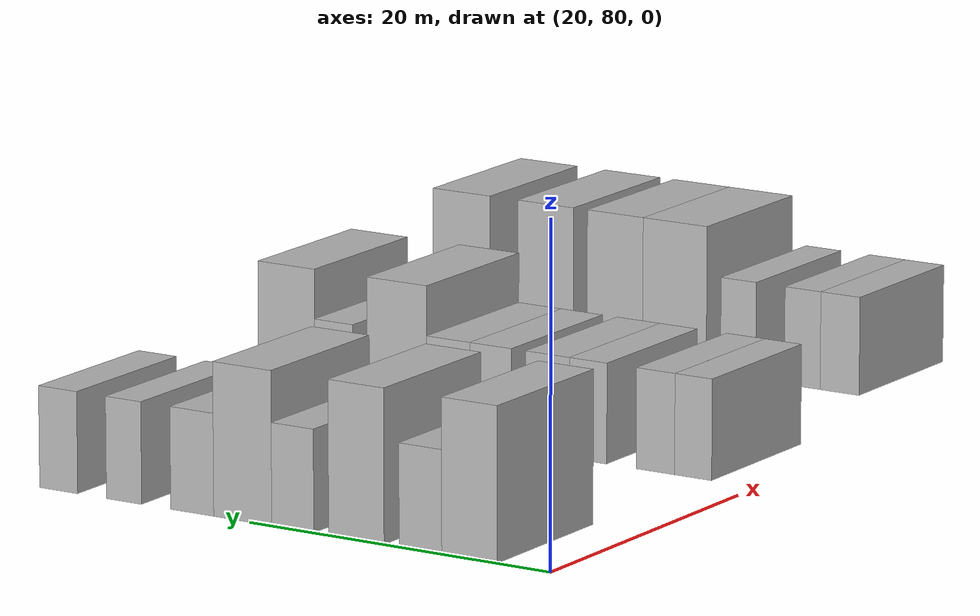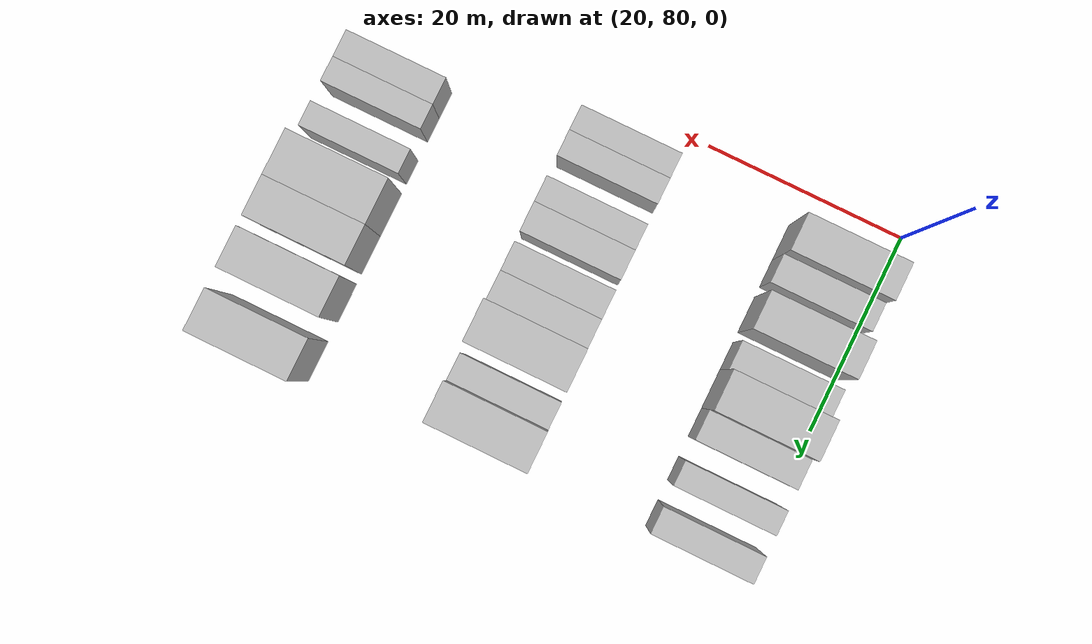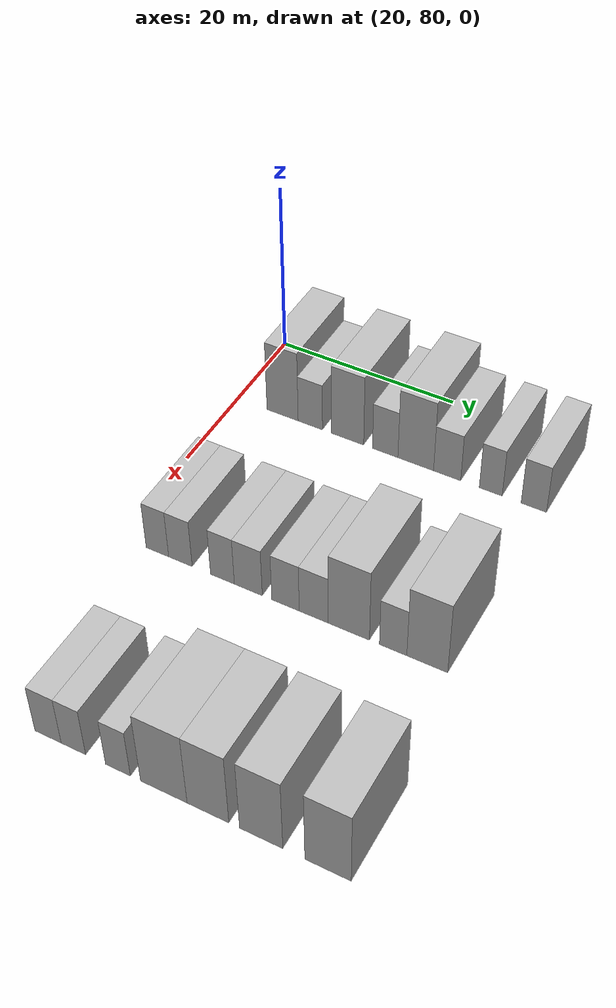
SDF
<sdf version="1.6">
 <world name="default">
  <model name="building_87">
   <static>1</static>
   <pose>25.0000 85.3126 0 0.000000 0.000000 0.000000</pose>
   <link name="link">
    <pose>0 0 4.50 0 0 0</pose>
    <collision name="collision"><geometry><box><size>10.0000 3.6634 9.0000</size></box></geometry></collision>
    <visual name="visual">
     <cast_shadows>0</cast_shadows>
     <geometry><box><size>10.0000 3.6634 9.0000</size></box></geometry>
     <material>
      <script>
       <uri>model://HANNAS_wall/materials/scripts</uri>
       <uri>model://HANNAS_wall/materials/textures</uri>
       <name>vrc/HANNAS_wall</name>
      </script>
     </material>
    </visual>
   </link>
  </model>
  <model name="building_88">
   <static>1</static>
   <pose>25.0000 88.5590 0 0.000000 0.000000 0.000000</pose>
   <link name="link">
    <pose>0 0 3.00 0 0 0</pose>
    <collision name="collision"><geometry><box><size>10.0000 2.8295 6.0000</size></box></geometry></collision>
    <visual name="visual">
     <cast_shadows>0</cast_shadows>
     <geometry><box><size>10.0000 2.8295 6.0000</size></box></geometry>
     <material>
      <script>
       <uri>model://HANNAS_wall/materials/scripts</uri>
       <uri>model://HANNAS_wall/materials/textures</uri>
       <name>vrc/HANNAS_wall</name>
      </script>
     </material>
    </visual>
   </link>
  </model>
  <model name="building_89">
   <static>1</static>
   <pose>25.0000 92.8309 0 0.000000 0.000000 0.000000</pose>
   <link name="link">
    <pose>0 0 4.50 0 0 0</pose>
    <collision name="collision"><geometry><box><size>10.0000 3.7143 9.0000</size></box></geometry></collision>
    <visual name="visual">
     <cast_shadows>0</cast_shadows>
     <geometry><box><size>10.0000 3.7143 9.0000</size></box></geometry>
     <material>
      <script>
       <uri>model://HANNAS_wall/materials/scripts</uri>
       <uri>model://HANNAS_wall/materials/textures</uri>
       <name>vrc/HANNAS_wall</name>
      </script>
     </material>
    </visual>
   </link>
  </model>
  <model name="building_90">
   <static>1</static>
   <pose>25.0000 97.1097 0 0.000000 0.000000 0.000000</pose>
   <link name="link">
    <pose>0 0 3.00 0 0 0</pose>
    <collision name="collision"><geometry><box><size>10.0000 2.8431 6.0000</size></box></geometry></collision>
    <visual name="visual">
     <cast_shadows>0</cast_shadows>
     <geometry><box><size>10.0000 2.8431 6.0000</size></box></geometry>
     <material>
      <script>
       <uri>model://HANNAS_wall/materials/scripts</uri>
       <uri>model://HANNAS_wall/materials/textures</uri>
       <name>vrc/HANNAS_wall</name>
      </script>
     </material>
    </visual>
   </link>
  </model>
  <model name="building_91">
   <static>1</static>
   <pose>25.0000 100.5039 0 0.000000 0.000000 0.000000</pose>
   <link name="link">
    <pose>0 0 4.50 0 0 0</pose>
    <collision name="collision"><geometry><box><size>10.0000 3.9452 9.0000</size></box></geometry></collision>
    <visual name="visual">
     <cast_shadows>0</cast_shadows>
     <geometry><box><size>10.0000 3.9452 9.0000</size></box></geometry>
     <material>
      <script>
       <uri>model://HANNAS_wall/materials/scripts</uri>
       <uri>model://HANNAS_wall/materials/textures</uri>
       <name>vrc/HANNAS_wall</name>
      </script>
     </material>
    </visual>
   </link>
  </model>
  <model name="building_92">
   <static>1</static>
   <pose>25.0000 103.9523 0 0.000000 0.000000 0.000000</pose>
   <link name="link">
    <pose>0 0 3.00 0 0 0</pose>
    <collision name="collision"><geometry><box><size>10.0000 2.9517 6.0000</size></box></geometry></collision>
    <visual name="visual">
     <cast_shadows>0</cast_shadows>
     <geometry><box><size>10.0000 2.9517 6.0000</size></box></geometry>
     <material>
      <script>
       <uri>model://HANNAS_wall/materials/scripts</uri>
       <uri>model://HANNAS_wall/materials/textures</uri>
       <name>vrc/HANNAS_wall</name>
      </script>
     </material>
    </visual>
   </link>
  </model>
  <model name="building_93">
   <static>1</static>
   <pose>25.0000 108.6472 0 0.000000 0.000000 0.000000</pose>
   <link name="link">
    <pose>0 0 3.00 0 0 0</pose>
    <collision name="collision"><geometry><box><size>10.0000 2.4379 6.0000</size></box></geometry></collision>
    <visual name="visual">
     <cast_shadows>0</cast_shadows>
     <geometry><box><size>10.0000 2.4379 6.0000</size></box></geometry>
     <material>
      <script>
       <uri>model://HANNAS_wall/materials/scripts</uri>
       <uri>model://HANNAS_wall/materials/textures</uri>
       <name>vrc/HANNAS_wall</name>
      </script>
     </material>
    </visual>
   </link>
  </model>
  <model name="building_94">
   <static>1</static>
   <pose>25.0000 113.1927 0 0.000000 0.000000 0.000000</pose>
   <link name="link">
    <pose>0 0 3.00 0 0 0</pose>
    <collision name="collision"><geometry><box><size>10.0000 2.6532 6.0000</size></box></geometry></collision>
    <visual name="visual">
     <cast_shadows>0</cast_shadows>
     <geometry><box><size>10.0000 2.6532 6.0000</size></box></geometry>
     <material>
      <script>
       <uri>model://HANNAS_wall/materials/scripts</uri>
       <uri>model://HANNAS_wall/materials/textures</uri>
       <name>vrc/HANNAS_wall</name>
      </script>
     </material>
    </visual>
   </link>
  </model>
  <model name="building_206">
   <static>1</static>
   <pose>47.0000 84.2189 0 0.000000 0.000000 0.000000</pose>
   <link name="link">
    <pose>0 0 3.00 0 0 0</pose>
    <collision name="collision"><geometry><box><size>10.0000 2.4942 6.0000</size></box></geometry></collision>
    <visual name="visual">
     <cast_shadows>0</cast_shadows>
     <geometry><box><size>10.0000 2.4942 6.0000</size></box></geometry>
     <material>
      <script>
       <uri>model://HANNAS_wall/materials/scripts</uri>
       <uri>model://HANNAS_wall/materials/textures</uri>
       <name>vrc/HANNAS_wall</name>
      </script>
     </material>
    </visual>
   </link>
  </model>
  <model name="building_207">
   <static>1</static>
   <pose>47.0000 86.7619 0 0.000000 0.000000 0.000000</pose>
   <link name="link">
    <pose>0 0 3.00 0 0 0</pose>
    <collision name="collision"><geometry><box><size>10.0000 2.5917 6.0000</size></box></geometry></collision>
    <visual name="visual">
     <cast_shadows>0</cast_shadows>
     <geometry><box><size>10.0000 2.5917 6.0000</size></box></geometry>
     <material>
      <script>
       <uri>model://HANNAS_wall/materials/scripts</uri>
       <uri>model://HANNAS_wall/materials/textures</uri>
       <name>vrc/HANNAS_wall</name>
      </script>
     </material>
    </visual>
   </link>
  </model>
  <model name="building_208">
   <static>1</static>
   <pose>47.0000 91.3387 0 0.000000 0.000000 0.000000</pose>
   <link name="link">
    <pose>0 0 3.00 0 0 0</pose>
    <collision name="collision"><geometry><box><size>10.0000 2.5619 6.0000</size></box></geometry></collision>
    <visual name="visual">
     <cast_shadows>0</cast_shadows>
     <geometry><box><size>10.0000 2.5619 6.0000</size></box></geometry>
     <material>
      <script>
       <uri>model://HANNAS_wall/materials/scripts</uri>
       <uri>model://HANNAS_wall/materials/textures</uri>
       <name>vrc/HANNAS_wall</name>
      </script>
     </material>
    </visual>
   </link>
  </model>
  <model name="building_209">
   <static>1</static>
   <pose>47.0000 94.1070 0 0.000000 0.000000 0.000000</pose>
   <link name="link">
    <pose>0 0 3.00 0 0 0</pose>
    <collision name="collision"><geometry><box><size>10.0000 2.9747 6.0000</size></box></geometry></collision>
    <visual name="visual">
     <cast_shadows>0</cast_shadows>
     <geometry><box><size>10.0000 2.9747 6.0000</size></box></geometry>
     <material>
      <script>
       <uri>model://HANNAS_wall/materials/scripts</uri>
       <uri>model://HANNAS_wall/materials/textures</uri>
       <name>vrc/HANNAS_wall</name>
      </script>
     </material>
    </visual>
   </link>
  </model>
  <model name="building_210">
   <static>1</static>
   <pose>47.0000 98.0271 0 0.000000 0.000000 0.000000</pose>
   <link name="link">
    <pose>0 0 3.00 0 0 0</pose>
    <collision name="collision"><geometry><box><size>10.0000 2.8655 6.0000</size></box></geometry></collision>
    <visual name="visual">
     <cast_shadows>0</cast_shadows>
     <geometry><box><size>10.0000 2.8655 6.0000</size></box></geometry>
     <material>
      <script>
       <uri>model://HANNAS_wall/materials/scripts</uri>
       <uri>model://HANNAS_wall/materials/textures</uri>
       <name>vrc/HANNAS_wall</name>
      </script>
     </material>
    </visual>
   </link>
  </model>
  <model name="building_211">
   <static>1</static>
   <pose>47.0000 100.9526 0 0.000000 0.000000 0.000000</pose>
   <link name="link">
    <pose>0 0 3.00 0 0 0</pose>
    <collision name="collision"><geometry><box><size>10.0000 2.9855 6.0000</size></box></geometry></collision>
    <visual name="visual">
     <cast_shadows>0</cast_shadows>
     <geometry><box><size>10.0000 2.9855 6.0000</size></box></geometry>
     <material>
      <script>
       <uri>model://HANNAS_wall/materials/scripts</uri>
       <uri>model://HANNAS_wall/materials/textures</uri>
       <name>vrc/HANNAS_wall</name>
      </script>
     </material>
    </visual>
   </link>
  </model>
  <model name="building_212">
   <static>1</static>
   <pose>47.0000 104.5278 0 0.000000 0.000000 0.000000</pose>
   <link name="link">
    <pose>0 0 4.50 0 0 0</pose>
    <collision name="collision"><geometry><box><size>10.0000 4.1650 9.0000</size></box></geometry></collision>
    <visual name="visual">
     <cast_shadows>0</cast_shadows>
     <geometry><box><size>10.0000 4.1650 9.0000</size></box></geometry>
     <material>
      <script>
       <uri>model://HANNAS_wall/materials/scripts</uri>
       <uri>model://HANNAS_wall/materials/textures</uri>
       <name>vrc/HANNAS_wall</name>
      </script>
     </material>
    </visual>
   </link>
  </model>
  <model name="building_213">
   <static>1</static>
   <pose>47.0000 108.9631 0 0.000000 0.000000 0.000000</pose>
   <link name="link">
    <pose>0 0 3.00 0 0 0</pose>
    <collision name="collision"><geometry><box><size>10.0000 2.7056 6.0000</size></box></geometry></collision>
    <visual name="visual">
     <cast_shadows>0</cast_shadows>
     <geometry><box><size>10.0000 2.7056 6.0000</size></box></geometry>
     <material>
      <script>
       <uri>model://HANNAS_wall/materials/scripts</uri>
       <uri>model://HANNAS_wall/materials/textures</uri>
       <name>vrc/HANNAS_wall</name>
      </script>
     </material>
    </visual>
   </link>
  </model>
  <model name="building_214">
   <static>1</static>
   <pose>47.0000 112.3114 0 0.000000 0.000000 0.000000</pose>
   <link name="link">
    <pose>0 0 4.50 0 0 0</pose>
    <collision name="collision"><geometry><box><size>10.0000 3.9910 9.0000</size></box></geometry></collision>
    <visual name="visual">
     <cast_shadows>0</cast_shadows>
     <geometry><box><size>10.0000 3.9910 9.0000</size></box></geometry>
     <material>
      <script>
       <uri>model://HANNAS_wall/materials/scripts</uri>
       <uri>model://HANNAS_wall/materials/textures</uri>
       <name>vrc/HANNAS_wall</name>
      </script>
     </material>
    </visual>
   </link>
  </model>
  <model name="building_336">
   <static>1</static>
   <pose>69.0000 87.4198 0 0.000000 0.000000 0.000000</pose>
   <link name="link">
    <pose>0 0 3.00 0 0 0</pose>
    <collision name="collision"><geometry><box><size>10.0000 2.6969 6.0000</size></box></geometry></collision>
    <visual name="visual">
     <cast_shadows>0</cast_shadows>
     <geometry><box><size>10.0000 2.6969 6.0000</size></box></geometry>
     <material>
      <script>
       <uri>model://HANNAS_wall/materials/scripts</uri>
       <uri>model://HANNAS_wall/materials/textures</uri>
       <name>vrc/HANNAS_wall</name>
      </script>
     </material>
    </visual>
   </link>
  </model>
  <model name="building_337">
   <static>1</static>
   <pose>69.0000 90.0088 0 0.000000 0.000000 0.000000</pose>
   <link name="link">
    <pose>0 0 3.00 0 0 0</pose>
    <collision name="collision"><geometry><box><size>10.0000 2.4810 6.0000</size></box></geometry></collision>
    <visual name="visual">
     <cast_shadows>0</cast_shadows>
     <geometry><box><size>10.0000 2.4810 6.0000</size></box></geometry>
     <material>
      <script>
       <uri>model://HANNAS_wall/materials/scripts</uri>
       <uri>model://HANNAS_wall/materials/textures</uri>
       <name>vrc/HANNAS_wall</name>
      </script>
     </material>
    </visual>
   </link>
  </model>
  <model name="building_338">
   <static>1</static>
   <pose>69.0000 94.4805 0 0.000000 0.000000 0.000000</pose>
   <link name="link">
    <pose>0 0 3.00 0 0 0</pose>
    <collision name="collision"><geometry><box><size>10.0000 2.4624 6.0000</size></box></geometry></collision>
    <visual name="visual">
     <cast_shadows>0</cast_shadows>
     <geometry><box><size>10.0000 2.4624 6.0000</size></box></geometry>
     <material>
      <script>
       <uri>model://HANNAS_wall/materials/scripts</uri>
       <uri>model://HANNAS_wall/materials/textures</uri>
       <name>vrc/HANNAS_wall</name>
      </script>
     </material>
    </visual>
   </link>
  </model>
  <model name="building_339">
   <static>1</static>
   <pose>69.0000 98.9615 0 0.000000 0.000000 0.000000</pose>
   <link name="link">
    <pose>0 0 4.50 0 0 0</pose>
    <collision name="collision"><geometry><box><size>10.0000 4.4996 9.0000</size></box></geometry></collision>
    <visual name="visual">
     <cast_shadows>0</cast_shadows>
     <geometry><box><size>10.0000 4.4996 9.0000</size></box></geometry>
     <material>
      <script>
       <uri>model://HANNAS_wall/materials/scripts</uri>
       <uri>model://HANNAS_wall/materials/textures</uri>
       <name>vrc/HANNAS_wall</name>
      </script>
     </material>
    </visual>
   </link>
  </model>
  <model name="building_340">
   <static>1</static>
   <pose>69.0000 103.1889 0 0.000000 0.000000 0.000000</pose>
   <link name="link">
    <pose>0 0 4.50 0 0 0</pose>
    <collision name="collision"><geometry><box><size>10.0000 3.9553 9.0000</size></box></geometry></collision>
    <visual name="visual">
     <cast_shadows>0</cast_shadows>
     <geometry><box><size>10.0000 3.9553 9.0000</size></box></geometry>
     <material>
      <script>
       <uri>model://HANNAS_wall/materials/scripts</uri>
       <uri>model://HANNAS_wall/materials/textures</uri>
       <name>vrc/HANNAS_wall</name>
      </script>
     </material>
    </visual>
   </link>
  </model>
  <model name="building_341">
   <static>1</static>
   <pose>69.0000 108.1580 0 0.000000 0.000000 0.000000</pose>
   <link name="link">
    <pose>0 0 4.50 0 0 0</pose>
    <collision name="collision"><geometry><box><size>10.0000 3.9827 9.0000</size></box></geometry></collision>
    <visual name="visual">
     <cast_shadows>0</cast_shadows>
     <geometry><box><size>10.0000 3.9827 9.0000</size></box></geometry>
     <material>
      <script>
       <uri>model://HANNAS_wall/materials/scripts</uri>
       <uri>model://HANNAS_wall/materials/textures</uri>
       <name>vrc/HANNAS_wall</name>
      </script>
     </material>
    </visual>
   </link>
  </model>
  <model name="building_342">
   <static>1</static>
   <pose>69.0000 114.2160 0 0.000000 0.000000 0.000000</pose>
   <link name="link">
    <pose>0 0 4.50 0 0 0</pose>
    <collision name="collision"><geometry><box><size>10.0000 4.1332 9.0000</size></box></geometry></collision>
    <visual name="visual">
     <cast_shadows>0</cast_shadows>
     <geometry><box><size>10.0000 4.1332 9.0000</size></box></geometry>
     <material>
      <script>
       <uri>model://HANNAS_wall/materials/scripts</uri>
       <uri>model://HANNAS_wall/materials/textures</uri>
       <name>vrc/HANNAS_wall</name>
      </script>
     </material>
    </visual>
   </link>
  </model>
 </world>
</sdf>
